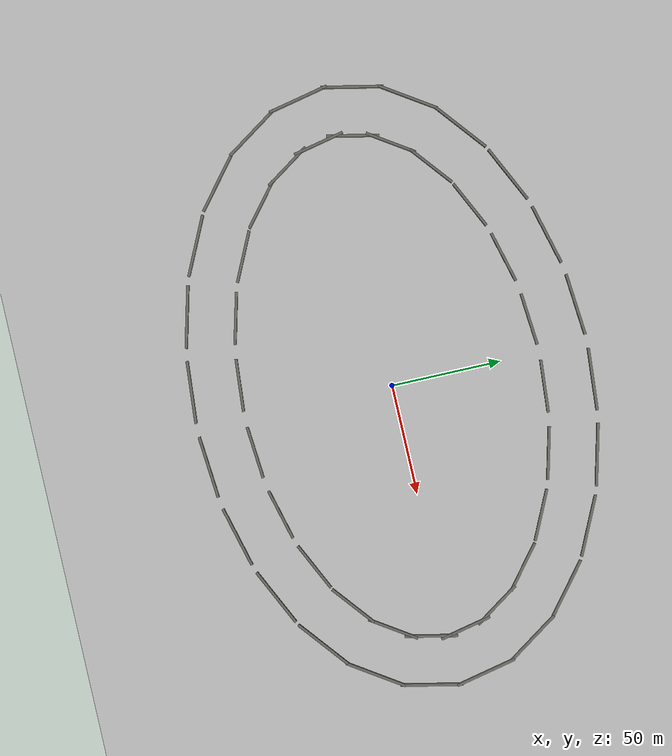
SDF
<sdf version="1.6">
 <world name="default">
  <scene>
   <ambient>0.45 0.45 0.50 1</ambient>
   <background>0.55 0.78 0.98 1</background>
   <shadows>true</shadows>
   <sky>
    <clouds>
     <speed>4</speed>
     <direction>1.2</direction>
     <humidity>0.45</humidity>
     <mean_size>0.55</mean_size>
     <ambient>0.85 0.85 0.85 1</ambient>
    </clouds>
   </sky>
  </scene>
  <light name="sun" type="directional">
   <pose>0 0 50 0 0 0</pose>
   <diffuse>1.00 0.93 0.80 1</diffuse>
   <specular>0.45 0.45 0.40 1</specular>
   <attenuation>
    <range>1000</range>
    <constant>0.9</constant>
    <linear>0.01</linear>
    <quadratic>0.001</quadratic>
   </attenuation>
   <direction>-0.45 0.25 -0.85</direction>
  </light>
  <include><uri>model://ground_plane</uri></include>
  <model name="track_inner_guardrail">
   <static>true</static>
   <link name="seg_00">
    <pose>113.97 8.00 0.55 0 0 1.7784</pose>
    <collision name="col"><geometry><box><size>24.0 1.2 1.1</size></box></geometry></collision>
    <visual name="vis">
     <geometry><box><size>24.0 1.2 1.1</size></box></geometry>
     <material>
      <ambient>0.12 0.12 0.12 1</ambient>
      <diffuse>0.45 0.45 0.42 1</diffuse>
      <specular>0.1 0.1 0.1 1</specular>
     </material>
    </visual>
   </link>
   <link name="seg_01">
    <pose>107.06 24.01 0.55 0 0 2.1561</pose>
    <collision name="col"><geometry><box><size>24.0 1.2 1.1</size></box></geometry></collision>
    <visual name="vis">
     <geometry><box><size>24.0 1.2 1.1</size></box></geometry>
     <material>
      <ambient>0.12 0.12 0.12 1</ambient>
      <diffuse>0.45 0.45 0.42 1</diffuse>
      <specular>0.1 0.1 0.1 1</specular>
     </material>
    </visual>
   </link>
   <link name="seg_02">
    <pose>92.86 39.34 0.55 0 0 2.4581</pose>
    <collision name="col"><geometry><box><size>24.0 1.2 1.1</size></box></geometry></collision>
    <visual name="vis">
     <geometry><box><size>24.0 1.2 1.1</size></box></geometry>
     <material>
      <ambient>0.12 0.12 0.12 1</ambient>
      <diffuse>0.45 0.45 0.42 1</diffuse>
      <specular>0.1 0.1 0.1 1</specular>
     </material>
    </visual>
   </link>
   <link name="seg_03">
    <pose>71.83 52.46 0.55 0 0 2.6944</pose>
    <collision name="col"><geometry><box><size>24.0 1.2 1.1</size></box></geometry></collision>
    <visual name="vis">
     <geometry><box><size>24.0 1.2 1.1</size></box></geometry>
     <material>
      <ambient>0.12 0.12 0.12 1</ambient>
      <diffuse>0.45 0.45 0.42 1</diffuse>
      <specular>0.1 0.1 0.1 1</specular>
     </material>
    </visual>
   </link>
   <link name="seg_04">
    <pose>45.39 62.00 0.55 0 0 2.8883</pose>
    <collision name="col"><geometry><box><size>24.0 1.2 1.1</size></box></geometry></collision>
    <visual name="vis">
     <geometry><box><size>24.0 1.2 1.1</size></box></geometry>
     <material>
      <ambient>0.12 0.12 0.12 1</ambient>
      <diffuse>0.45 0.45 0.42 1</diffuse>
      <specular>0.1 0.1 0.1 1</specular>
     </material>
    </visual>
   </link>
   <link name="seg_05">
    <pose>15.52 67.00 0.55 0 0 3.0595</pose>
    <collision name="col"><geometry><box><size>24.0 1.2 1.1</size></box></geometry></collision>
    <visual name="vis">
     <geometry><box><size>24.0 1.2 1.1</size></box></geometry>
     <material>
      <ambient>0.12 0.12 0.12 1</ambient>
      <diffuse>0.45 0.45 0.42 1</diffuse>
      <specular>0.1 0.1 0.1 1</specular>
     </material>
    </visual>
   </link>
   <link name="seg_06">
    <pose>-15.52 67.00 0.55 0 0 -3.0595</pose>
    <collision name="col"><geometry><box><size>24.0 1.2 1.1</size></box></geometry></collision>
    <visual name="vis">
     <geometry><box><size>24.0 1.2 1.1</size></box></geometry>
     <material>
      <ambient>0.12 0.12 0.12 1</ambient>
      <diffuse>0.45 0.45 0.42 1</diffuse>
      <specular>0.1 0.1 0.1 1</specular>
     </material>
    </visual>
   </link>
   <link name="seg_07">
    <pose>-45.39 62.00 0.55 0 0 -2.8883</pose>
    <collision name="col"><geometry><box><size>24.0 1.2 1.1</size></box></geometry></collision>
    <visual name="vis">
     <geometry><box><size>24.0 1.2 1.1</size></box></geometry>
     <material>
      <ambient>0.12 0.12 0.12 1</ambient>
      <diffuse>0.45 0.45 0.42 1</diffuse>
      <specular>0.1 0.1 0.1 1</specular>
     </material>
    </visual>
   </link>
   <link name="seg_08">
    <pose>-71.83 52.46 0.55 0 0 -2.6944</pose>
    <collision name="col"><geometry><box><size>24.0 1.2 1.1</size></box></geometry></collision>
    <visual name="vis">
     <geometry><box><size>24.0 1.2 1.1</size></box></geometry>
     <material>
      <ambient>0.12 0.12 0.12 1</ambient>
      <diffuse>0.45 0.45 0.42 1</diffuse>
      <specular>0.1 0.1 0.1 1</specular>
     </material>
    </visual>
   </link>
   <link name="seg_09">
    <pose>-92.86 39.34 0.55 0 0 -2.4581</pose>
    <collision name="col"><geometry><box><size>24.0 1.2 1.1</size></box></geometry></collision>
    <visual name="vis">
     <geometry><box><size>24.0 1.2 1.1</size></box></geometry>
     <material>
      <ambient>0.12 0.12 0.12 1</ambient>
      <diffuse>0.45 0.45 0.42 1</diffuse>
      <specular>0.1 0.1 0.1 1</specular>
     </material>
    </visual>
   </link>
   <link name="seg_10">
    <pose>-107.06 24.01 0.55 0 0 -2.1561</pose>
    <collision name="col"><geometry><box><size>24.0 1.2 1.1</size></box></geometry></collision>
    <visual name="vis">
     <geometry><box><size>24.0 1.2 1.1</size></box></geometry>
     <material>
      <ambient>0.12 0.12 0.12 1</ambient>
      <diffuse>0.45 0.45 0.42 1</diffuse>
      <specular>0.1 0.1 0.1 1</specular>
     </material>
    </visual>
   </link>
   <link name="seg_11">
    <pose>-113.97 8.00 0.55 0 0 -1.7784</pose>
    <collision name="col"><geometry><box><size>24.0 1.2 1.1</size></box></geometry></collision>
    <visual name="vis">
     <geometry><box><size>24.0 1.2 1.1</size></box></geometry>
     <material>
      <ambient>0.12 0.12 0.12 1</ambient>
      <diffuse>0.45 0.45 0.42 1</diffuse>
      <specular>0.1 0.1 0.1 1</specular>
     </material>
    </visual>
   </link>
   <link name="seg_12">
    <pose>-113.97 -8.00 0.55 0 0 -1.3632</pose>
    <collision name="col"><geometry><box><size>24.0 1.2 1.1</size></box></geometry></collision>
    <visual name="vis">
     <geometry><box><size>24.0 1.2 1.1</size></box></geometry>
     <material>
      <ambient>0.12 0.12 0.12 1</ambient>
      <diffuse>0.45 0.45 0.42 1</diffuse>
      <specular>0.1 0.1 0.1 1</specular>
     </material>
    </visual>
   </link>
   <link name="seg_13">
    <pose>-107.06 -24.01 0.55 0 0 -0.9855</pose>
    <collision name="col"><geometry><box><size>24.0 1.2 1.1</size></box></geometry></collision>
    <visual name="vis">
     <geometry><box><size>24.0 1.2 1.1</size></box></geometry>
     <material>
      <ambient>0.12 0.12 0.12 1</ambient>
      <diffuse>0.45 0.45 0.42 1</diffuse>
      <specular>0.1 0.1 0.1 1</specular>
     </material>
    </visual>
   </link>
   <link name="seg_14">
    <pose>-92.86 -39.34 0.55 0 0 -0.6835</pose>
    <collision name="col"><geometry><box><size>24.0 1.2 1.1</size></box></geometry></collision>
    <visual name="vis">
     <geometry><box><size>24.0 1.2 1.1</size></box></geometry>
     <material>
      <ambient>0.12 0.12 0.12 1</ambient>
      <diffuse>0.45 0.45 0.42 1</diffuse>
      <specular>0.1 0.1 0.1 1</specular>
     </material>
    </visual>
   </link>
   <link name="seg_15">
    <pose>-71.83 -52.46 0.55 0 0 -0.4472</pose>
    <collision name="col"><geometry><box><size>24.0 1.2 1.1</size></box></geometry></collision>
    <visual name="vis">
     <geometry><box><size>24.0 1.2 1.1</size></box></geometry>
     <material>
      <ambient>0.12 0.12 0.12 1</ambient>
      <diffuse>0.45 0.45 0.42 1</diffuse>
      <specular>0.1 0.1 0.1 1</specular>
     </material>
    </visual>
   </link>
   <link name="seg_16">
    <pose>-45.39 -62.00 0.55 0 0 -0.2533</pose>
    <collision name="col"><geometry><box><size>24.0 1.2 1.1</size></box></geometry></collision>
    <visual name="vis">
     <geometry><box><size>24.0 1.2 1.1</size></box></geometry>
     <material>
      <ambient>0.12 0.12 0.12 1</ambient>
      <diffuse>0.45 0.45 0.42 1</diffuse>
      <specular>0.1 0.1 0.1 1</specular>
     </material>
    </visual>
   </link>
   <link name="seg_17">
    <pose>-15.52 -67.00 0.55 0 0 -0.0821</pose>
    <collision name="col"><geometry><box><size>24.0 1.2 1.1</size></box></geometry></collision>
    <visual name="vis">
     <geometry><box><size>24.0 1.2 1.1</size></box></geometry>
     <material>
      <ambient>0.12 0.12 0.12 1</ambient>
      <diffuse>0.45 0.45 0.42 1</diffuse>
      <specular>0.1 0.1 0.1 1</specular>
     </material>
    </visual>
   </link>
   <link name="seg_18">
    <pose>15.52 -67.00 0.55 0 0 0.0821</pose>
    <collision name="col"><geometry><box><size>24.0 1.2 1.1</size></box></geometry></collision>
    <visual name="vis">
     <geometry><box><size>24.0 1.2 1.1</size></box></geometry>
     <material>
      <ambient>0.12 0.12 0.12 1</ambient>
      <diffuse>0.45 0.45 0.42 1</diffuse>
      <specular>0.1 0.1 0.1 1</specular>
     </material>
    </visual>
   </link>
   <link name="seg_19">
    <pose>45.39 -62.00 0.55 0 0 0.2533</pose>
    <collision name="col"><geometry><box><size>24.0 1.2 1.1</size></box></geometry></collision>
    <visual name="vis">
     <geometry><box><size>24.0 1.2 1.1</size></box></geometry>
     <material>
      <ambient>0.12 0.12 0.12 1</ambient>
      <diffuse>0.45 0.45 0.42 1</diffuse>
      <specular>0.1 0.1 0.1 1</specular>
     </material>
    </visual>
   </link>
   <link name="seg_20">
    <pose>71.83 -52.46 0.55 0 0 0.4472</pose>
    <collision name="col"><geometry><box><size>24.0 1.2 1.1</size></box></geometry></collision>
    <visual name="vis">
     <geometry><box><size>24.0 1.2 1.1</size></box></geometry>
     <material>
      <ambient>0.12 0.12 0.12 1</ambient>
      <diffuse>0.45 0.45 0.42 1</diffuse>
      <specular>0.1 0.1 0.1 1</specular>
     </material>
    </visual>
   </link>
   <link name="seg_21">
    <pose>92.86 -39.34 0.55 0 0 0.6835</pose>
    <collision name="col"><geometry><box><size>24.0 1.2 1.1</size></box></geometry></collision>
    <visual name="vis">
     <geometry><box><size>24.0 1.2 1.1</size></box></geometry>
     <material>
      <ambient>0.12 0.12 0.12 1</ambient>
      <diffuse>0.45 0.45 0.42 1</diffuse>
      <specular>0.1 0.1 0.1 1</specular>
     </material>
    </visual>
   </link>
   <link name="seg_22">
    <pose>107.06 -24.01 0.55 0 0 0.9855</pose>
    <collision name="col"><geometry><box><size>24.0 1.2 1.1</size></box></geometry></collision>
    <visual name="vis">
     <geometry><box><size>24.0 1.2 1.1</size></box></geometry>
     <material>
      <ambient>0.12 0.12 0.12 1</ambient>
      <diffuse>0.45 0.45 0.42 1</diffuse>
      <specular>0.1 0.1 0.1 1</specular>
     </material>
    </visual>
   </link>
   <link name="seg_23">
    <pose>113.97 -8.00 0.55 0 0 1.3632</pose>
    <collision name="col"><geometry><box><size>24.0 1.2 1.1</size></box></geometry></collision>
    <visual name="vis">
     <geometry><box><size>24.0 1.2 1.1</size></box></geometry>
     <material>
      <ambient>0.12 0.12 0.12 1</ambient>
      <diffuse>0.45 0.45 0.42 1</diffuse>
      <specular>0.1 0.1 0.1 1</specular>
     </material>
    </visual>
   </link>
  </model>
  <model name="track_outer_guardrail">
   <static>true</static>
   <link name="seg_00">
    <pose>135.50 12.53 0.55 0 0 1.7784</pose>
    <collision name="col"><geometry><box><size>28.5 1.2 1.1</size></box></geometry></collision>
    <visual name="vis">
     <geometry><box><size>28.5 1.2 1.1</size></box></geometry>
     <material>
      <ambient>0.12 0.12 0.12 1</ambient>
      <diffuse>0.45 0.45 0.42 1</diffuse>
      <specular>0.1 0.1 0.1 1</specular>
     </material>
    </visual>
   </link>
   <link name="seg_01">
    <pose>125.40 36.17 0.55 0 0 2.1561</pose>
    <collision name="col"><geometry><box><size>28.5 1.2 1.1</size></box></geometry></collision>
    <visual name="vis">
     <geometry><box><size>28.5 1.2 1.1</size></box></geometry>
     <material>
      <ambient>0.12 0.12 0.12 1</ambient>
      <diffuse>0.45 0.45 0.42 1</diffuse>
      <specular>0.1 0.1 0.1 1</specular>
     </material>
    </visual>
   </link>
   <link name="seg_02">
    <pose>106.76 56.40 0.55 0 0 2.4581</pose>
    <collision name="col"><geometry><box><size>28.5 1.2 1.1</size></box></geometry></collision>
    <visual name="vis">
     <geometry><box><size>28.5 1.2 1.1</size></box></geometry>
     <material>
      <ambient>0.12 0.12 0.12 1</ambient>
      <diffuse>0.45 0.45 0.42 1</diffuse>
      <specular>0.1 0.1 0.1 1</specular>
     </material>
    </visual>
   </link>
   <link name="seg_03">
    <pose>81.34 72.30 0.55 0 0 2.6944</pose>
    <collision name="col"><geometry><box><size>28.5 1.2 1.1</size></box></geometry></collision>
    <visual name="vis">
     <geometry><box><size>28.5 1.2 1.1</size></box></geometry>
     <material>
      <ambient>0.12 0.12 0.12 1</ambient>
      <diffuse>0.45 0.45 0.42 1</diffuse>
      <specular>0.1 0.1 0.1 1</specular>
     </material>
    </visual>
   </link>
   <link name="seg_04">
    <pose>50.90 83.29 0.55 0 0 2.8883</pose>
    <collision name="col"><geometry><box><size>28.5 1.2 1.1</size></box></geometry></collision>
    <visual name="vis">
     <geometry><box><size>28.5 1.2 1.1</size></box></geometry>
     <material>
      <ambient>0.12 0.12 0.12 1</ambient>
      <diffuse>0.45 0.45 0.42 1</diffuse>
      <specular>0.1 0.1 0.1 1</specular>
     </material>
    </visual>
   </link>
   <link name="seg_05">
    <pose>17.32 88.92 0.55 0 0 3.0595</pose>
    <collision name="col"><geometry><box><size>28.5 1.2 1.1</size></box></geometry></collision>
    <visual name="vis">
     <geometry><box><size>28.5 1.2 1.1</size></box></geometry>
     <material>
      <ambient>0.12 0.12 0.12 1</ambient>
      <diffuse>0.45 0.45 0.42 1</diffuse>
      <specular>0.1 0.1 0.1 1</specular>
     </material>
    </visual>
   </link>
   <link name="seg_06">
    <pose>-17.32 88.92 0.55 0 0 -3.0595</pose>
    <collision name="col"><geometry><box><size>28.5 1.2 1.1</size></box></geometry></collision>
    <visual name="vis">
     <geometry><box><size>28.5 1.2 1.1</size></box></geometry>
     <material>
      <ambient>0.12 0.12 0.12 1</ambient>
      <diffuse>0.45 0.45 0.42 1</diffuse>
      <specular>0.1 0.1 0.1 1</specular>
     </material>
    </visual>
   </link>
   <link name="seg_07">
    <pose>-50.90 83.29 0.55 0 0 -2.8883</pose>
    <collision name="col"><geometry><box><size>28.5 1.2 1.1</size></box></geometry></collision>
    <visual name="vis">
     <geometry><box><size>28.5 1.2 1.1</size></box></geometry>
     <material>
      <ambient>0.12 0.12 0.12 1</ambient>
      <diffuse>0.45 0.45 0.42 1</diffuse>
      <specular>0.1 0.1 0.1 1</specular>
     </material>
    </visual>
   </link>
   <link name="seg_08">
    <pose>-81.34 72.30 0.55 0 0 -2.6944</pose>
    <collision name="col"><geometry><box><size>28.5 1.2 1.1</size></box></geometry></collision>
    <visual name="vis">
     <geometry><box><size>28.5 1.2 1.1</size></box></geometry>
     <material>
      <ambient>0.12 0.12 0.12 1</ambient>
      <diffuse>0.45 0.45 0.42 1</diffuse>
      <specular>0.1 0.1 0.1 1</specular>
     </material>
    </visual>
   </link>
   <link name="seg_09">
    <pose>-106.76 56.40 0.55 0 0 -2.4581</pose>
    <collision name="col"><geometry><box><size>28.5 1.2 1.1</size></box></geometry></collision>
    <visual name="vis">
     <geometry><box><size>28.5 1.2 1.1</size></box></geometry>
     <material>
      <ambient>0.12 0.12 0.12 1</ambient>
      <diffuse>0.45 0.45 0.42 1</diffuse>
      <specular>0.1 0.1 0.1 1</specular>
     </material>
    </visual>
   </link>
   <link name="seg_10">
    <pose>-125.40 36.17 0.55 0 0 -2.1561</pose>
    <collision name="col"><geometry><box><size>28.5 1.2 1.1</size></box></geometry></collision>
    <visual name="vis">
     <geometry><box><size>28.5 1.2 1.1</size></box></geometry>
     <material>
      <ambient>0.12 0.12 0.12 1</ambient>
      <diffuse>0.45 0.45 0.42 1</diffuse>
      <specular>0.1 0.1 0.1 1</specular>
     </material>
    </visual>
   </link>
   <link name="seg_11">
    <pose>-135.50 12.53 0.55 0 0 -1.7784</pose>
    <collision name="col"><geometry><box><size>28.5 1.2 1.1</size></box></geometry></collision>
    <visual name="vis">
     <geometry><box><size>28.5 1.2 1.1</size></box></geometry>
     <material>
      <ambient>0.12 0.12 0.12 1</ambient>
      <diffuse>0.45 0.45 0.42 1</diffuse>
      <specular>0.1 0.1 0.1 1</specular>
     </material>
    </visual>
   </link>
   <link name="seg_12">
    <pose>-135.50 -12.53 0.55 0 0 -1.3632</pose>
    <collision name="col"><geometry><box><size>28.5 1.2 1.1</size></box></geometry></collision>
    <visual name="vis">
     <geometry><box><size>28.5 1.2 1.1</size></box></geometry>
     <material>
      <ambient>0.12 0.12 0.12 1</ambient>
      <diffuse>0.45 0.45 0.42 1</diffuse>
      <specular>0.1 0.1 0.1 1</specular>
     </material>
    </visual>
   </link>
   <link name="seg_13">
    <pose>-125.40 -36.17 0.55 0 0 -0.9855</pose>
    <collision name="col"><geometry><box><size>28.5 1.2 1.1</size></box></geometry></collision>
    <visual name="vis">
     <geometry><box><size>28.5 1.2 1.1</size></box></geometry>
     <material>
      <ambient>0.12 0.12 0.12 1</ambient>
      <diffuse>0.45 0.45 0.42 1</diffuse>
      <specular>0.1 0.1 0.1 1</specular>
     </material>
    </visual>
   </link>
   <link name="seg_14">
    <pose>-106.76 -56.40 0.55 0 0 -0.6835</pose>
    <collision name="col"><geometry><box><size>28.5 1.2 1.1</size></box></geometry></collision>
    <visual name="vis">
     <geometry><box><size>28.5 1.2 1.1</size></box></geometry>
     <material>
      <ambient>0.12 0.12 0.12 1</ambient>
      <diffuse>0.45 0.45 0.42 1</diffuse>
      <specular>0.1 0.1 0.1 1</specular>
     </material>
    </visual>
   </link>
   <link name="seg_15">
    <pose>-81.34 -72.30 0.55 0 0 -0.4472</pose>
    <collision name="col"><geometry><box><size>28.5 1.2 1.1</size></box></geometry></collision>
    <visual name="vis">
     <geometry><box><size>28.5 1.2 1.1</size></box></geometry>
     <material>
      <ambient>0.12 0.12 0.12 1</ambient>
      <diffuse>0.45 0.45 0.42 1</diffuse>
      <specular>0.1 0.1 0.1 1</specular>
     </material>
    </visual>
   </link>
   <link name="seg_16">
    <pose>-50.90 -83.29 0.55 0 0 -0.2533</pose>
    <collision name="col"><geometry><box><size>28.5 1.2 1.1</size></box></geometry></collision>
    <visual name="vis">
     <geometry><box><size>28.5 1.2 1.1</size></box></geometry>
     <material>
      <ambient>0.12 0.12 0.12 1</ambient>
      <diffuse>0.45 0.45 0.42 1</diffuse>
      <specular>0.1 0.1 0.1 1</specular>
     </material>
    </visual>
   </link>
   <link name="seg_17">
    <pose>-17.32 -88.92 0.55 0 0 -0.0821</pose>
    <collision name="col"><geometry><box><size>28.5 1.2 1.1</size></box></geometry></collision>
    <visual name="vis">
     <geometry><box><size>28.5 1.2 1.1</size></box></geometry>
     <material>
      <ambient>0.12 0.12 0.12 1</ambient>
      <diffuse>0.45 0.45 0.42 1</diffuse>
      <specular>0.1 0.1 0.1 1</specular>
     </material>
    </visual>
   </link>
   <link name="seg_18">
    <pose>17.32 -88.92 0.55 0 0 0.0821</pose>
    <collision name="col"><geometry><box><size>28.5 1.2 1.1</size></box></geometry></collision>
    <visual name="vis">
     <geometry><box><size>28.5 1.2 1.1</size></box></geometry>
     <material>
      <ambient>0.12 0.12 0.12 1</ambient>
      <diffuse>0.45 0.45 0.42 1</diffuse>
      <specular>0.1 0.1 0.1 1</specular>
     </material>
    </visual>
   </link>
   <link name="seg_19">
    <pose>50.90 -83.29 0.55 0 0 0.2533</pose>
    <collision name="col"><geometry><box><size>28.5 1.2 1.1</size></box></geometry></collision>
    <visual name="vis">
     <geometry><box><size>28.5 1.2 1.1</size></box></geometry>
     <material>
      <ambient>0.12 0.12 0.12 1</ambient>
      <diffuse>0.45 0.45 0.42 1</diffuse>
      <specular>0.1 0.1 0.1 1</specular>
     </material>
    </visual>
   </link>
   <link name="seg_20">
    <pose>81.34 -72.30 0.55 0 0 0.4472</pose>
    <collision name="col"><geometry><box><size>28.5 1.2 1.1</size></box></geometry></collision>
    <visual name="vis">
     <geometry><box><size>28.5 1.2 1.1</size></box></geometry>
     <material>
      <ambient>0.12 0.12 0.12 1</ambient>
      <diffuse>0.45 0.45 0.42 1</diffuse>
      <specular>0.1 0.1 0.1 1</specular>
     </material>
    </visual>
   </link>
   <link name="seg_21">
    <pose>106.76 -56.40 0.55 0 0 0.6835</pose>
    <collision name="col"><geometry><box><size>28.5 1.2 1.1</size></box></geometry></collision>
    <visual name="vis">
     <geometry><box><size>28.5 1.2 1.1</size></box></geometry>
     <material>
      <ambient>0.12 0.12 0.12 1</ambient>
      <diffuse>0.45 0.45 0.42 1</diffuse>
      <specular>0.1 0.1 0.1 1</specular>
     </material>
    </visual>
   </link>
   <link name="seg_22">
    <pose>125.40 -36.17 0.55 0 0 0.9855</pose>
    <collision name="col"><geometry><box><size>28.5 1.2 1.1</size></box></geometry></collision>
    <visual name="vis">
     <geometry><box><size>28.5 1.2 1.1</size></box></geometry>
     <material>
      <ambient>0.12 0.12 0.12 1</ambient>
      <diffuse>0.45 0.45 0.42 1</diffuse>
      <specular>0.1 0.1 0.1 1</specular>
     </material>
    </visual>
   </link>
   <link name="seg_23">
    <pose>135.50 -12.53 0.55 0 0 1.3632</pose>
    <collision name="col"><geometry><box><size>28.5 1.2 1.1</size></box></geometry></collision>
    <visual name="vis">
     <geometry><box><size>28.5 1.2 1.1</size></box></geometry>
     <material>
      <ambient>0.12 0.12 0.12 1</ambient>
      <diffuse>0.45 0.45 0.42 1</diffuse>
      <specular>0.1 0.1 0.1 1</specular>
     </material>
    </visual>
   </link>
  </model>
 </world>
</sdf>
